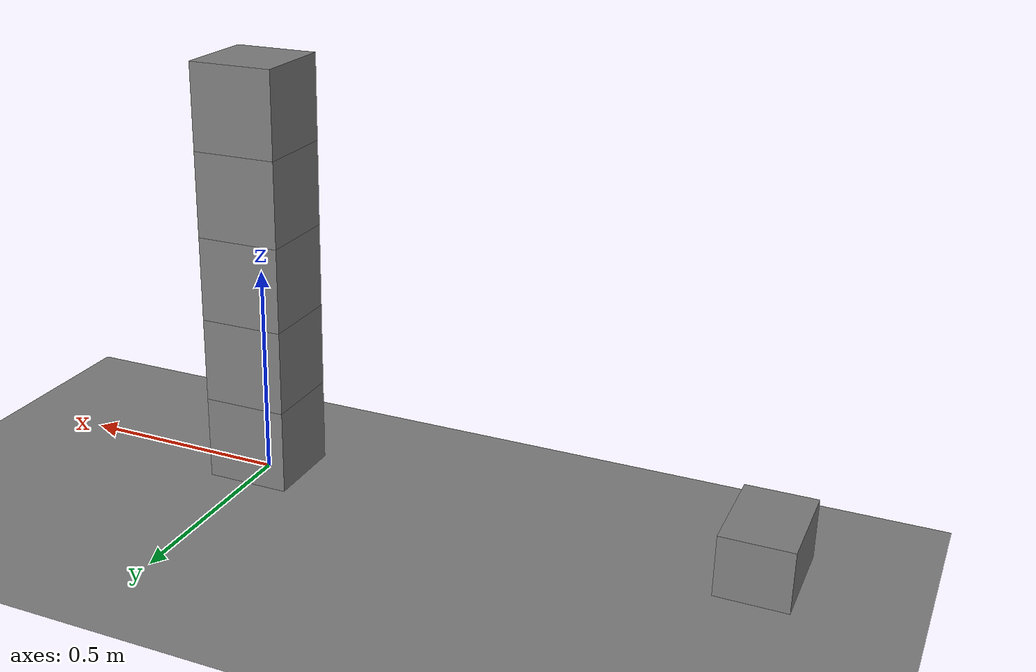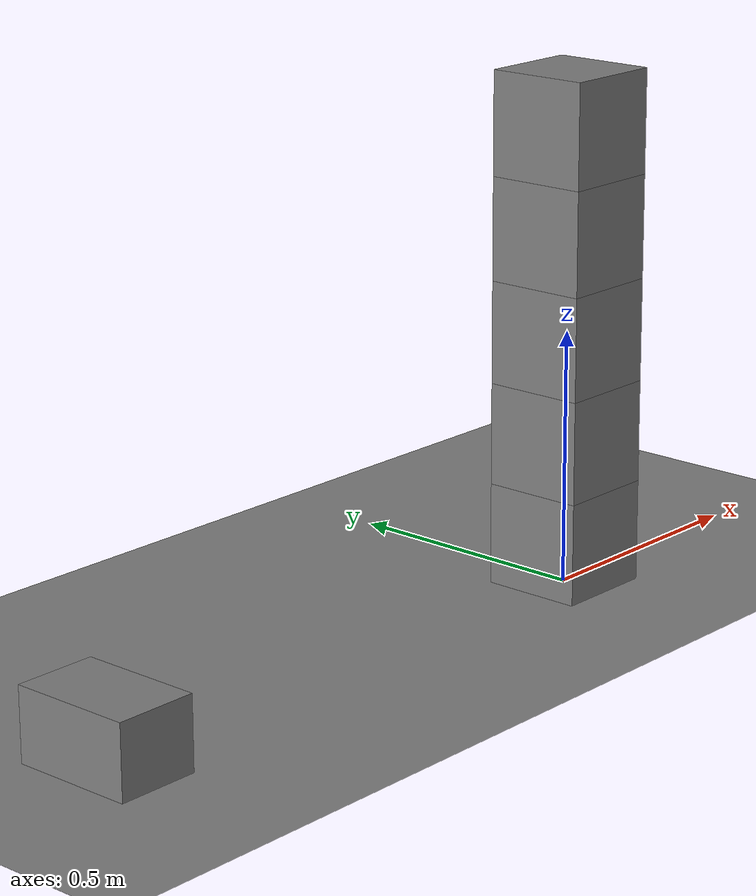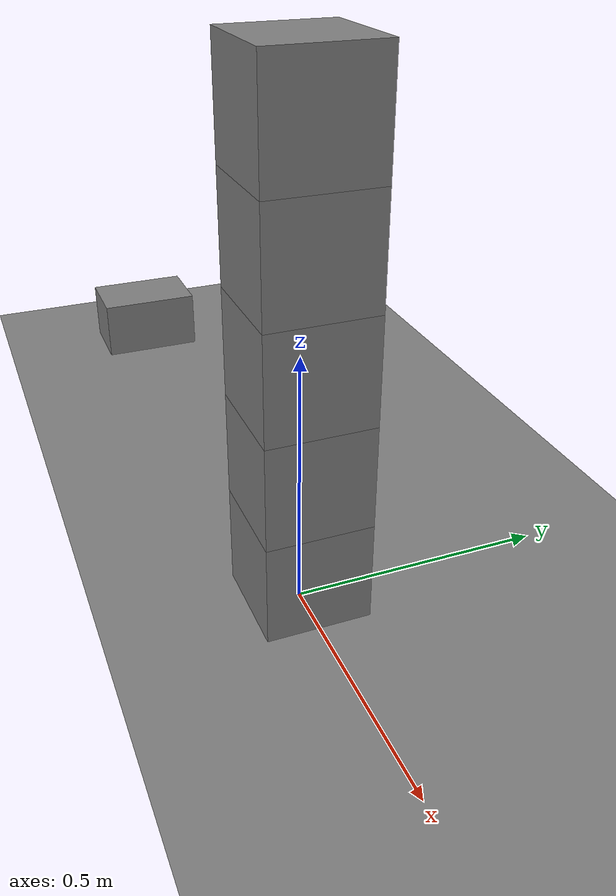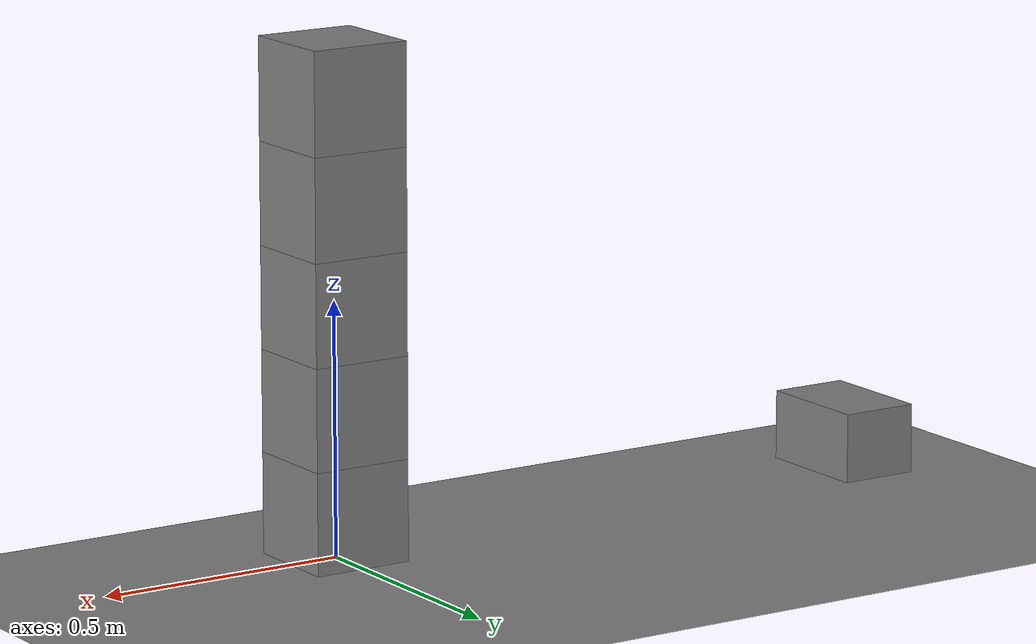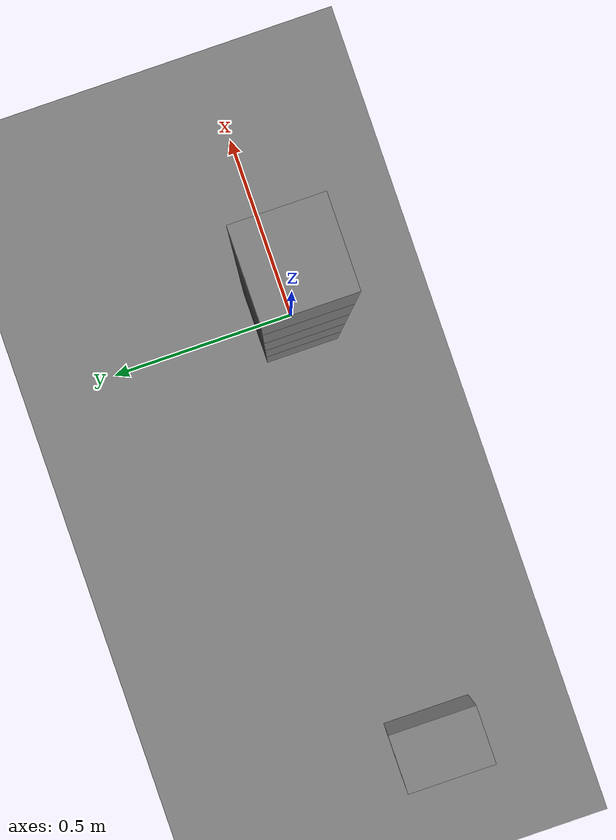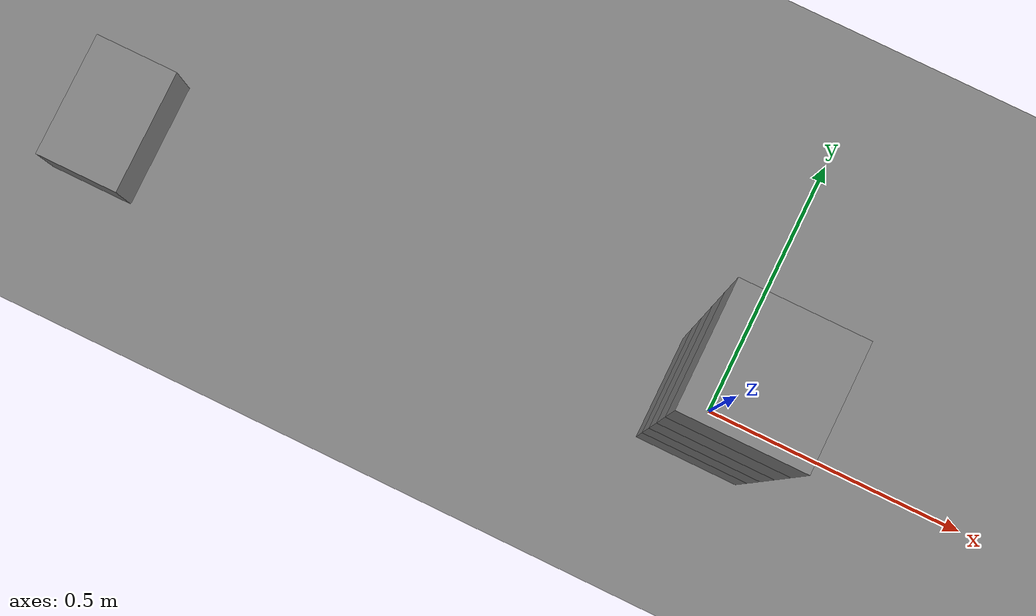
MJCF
<mujoco model="stack_topple">
  <option timestep="0.002"/>
  <worldbody>
    <geom name="floor" type="plane" size="6 6 0.1" friction="0.6 0.005 0.0001"/>
    <body name="block1" pos="0 0 0.100">
      <freejoint/>
      <geom name="block1" type="box" size="0.1 0.1 0.1" mass="0.5" friction="0.6 0.005 0.0001"/>
    </body>
    <body name="block2" pos="0 0 0.300">
      <freejoint/>
      <geom name="block2" type="box" size="0.1 0.1 0.1" mass="0.5" friction="0.6 0.005 0.0001"/>
    </body>
    <body name="block3" pos="0 0 0.500">
      <freejoint/>
      <geom name="block3" type="box" size="0.1 0.1 0.1" mass="0.5" friction="0.6 0.005 0.0001"/>
    </body>
    <body name="block4" pos="0 0 0.700">
      <freejoint/>
      <geom name="block4" type="box" size="0.1 0.1 0.1" mass="0.5" friction="0.6 0.005 0.0001"/>
    </body>
    <body name="block5" pos="0 0 0.900">
      <freejoint/>
      <geom name="block5" type="box" size="0.1 0.1 0.1" mass="0.5" friction="0.6 0.005 0.0001"/>
    </body>
    <body name="pusher" pos="-1.2 0 0.08">
      <joint name="pusher_slide" type="slide" axis="1 0 0" limited="true" range="0 1.8" damping="1"/>
      <geom name="pusher" type="box" size="0.08 0.12 0.07" mass="4.0" friction="0.3 0.005 0.0001"/>
    </body>
  </worldbody>
  <actuator>
    <velocity name="pusher_drive" joint="pusher_slide" kv="200" ctrllimited="true" ctrlrange="0 2" forcelimited="true" forcerange="-200 200"/>
  </actuator>
  <keyframe>
    <key name="start" ctrl="2"/>
  </keyframe>
</mujoco>
